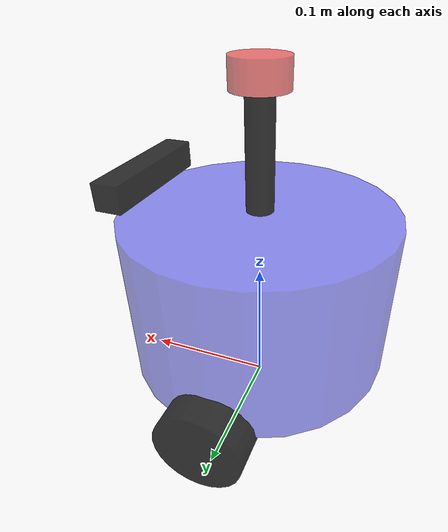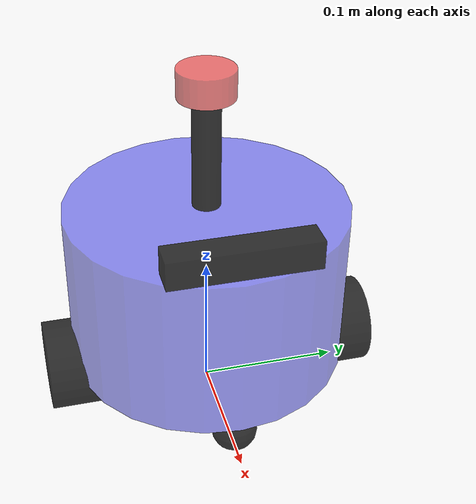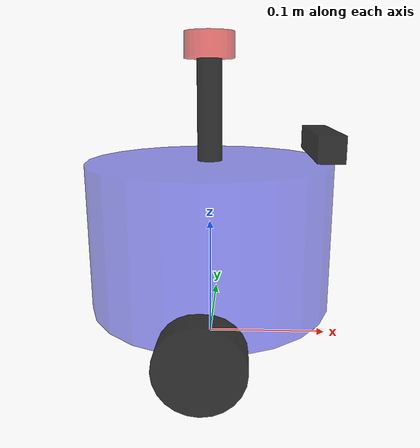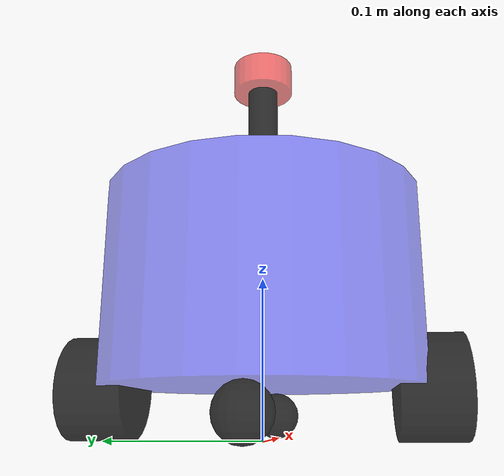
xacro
<?xml version="1.0"?>
<robot xmlns:xacro ="http://www.ros.org/wiki/xacro" name="robot">

    <xacro:arg name="lidar_type" default="gpu_lidar"/>
    <xacro:arg name="lidar_noise_stddev" default="0.01"/>
    <xacro:arg name="enable_camera" default="false"/>

    <xacro:include filename ="$(find bot_description)/bot/base.urdf.xacro"/>
    <xacro:include filename ="$(find bot_description)/bot/sensor/camera.urdf.xacro"/>
    <xacro:include filename ="$(find bot_description)/bot/sensor/imu.urdf.xacro"/>
    <xacro:include filename ="$(find bot_description)/bot/sensor/laser.urdf.xacro"/>
    <xacro:include filename ="$(find bot_description)/bot/actuator/wheel.urdf.xacro"/>
    <xacro:include filename ="$(find bot_description)/bot/actuator/caster.urdf.xacro"/>
    <!-- 导入gazebo差分驱动插件宏 -->
    <xacro:include filename ="$(find bot_description)/bot/plugins/plugin_drive.xacro"/>
    <xacro:include filename ="$(find bot_description)/bot/plugins/plugin_sensor.xacro"/>
    <xacro:gazebo_control_plugin/>
    <xacro:gazebo_sensor_plugin/>

    <xacro:base_xacro length ="0.12" radius="0.1"/>
    <xacro:imu_xacro xyz="0 0 0.02"/>
    <xacro:camera_xacro xyz="0.09 0 0.075"/>
    <xacro:laser_xacro xyz="0 0 0.1"/>
    <xacro:wheel_xacro wheel_name="left" xyz="0 0.10 -0.06" />
    <xacro:wheel_xacro wheel_name="right" xyz="0 -0.10 -0.06" />
    <xacro:caster_xacro caster_name="front" xyz="0.08 0.0 -0.076" />
    <xacro:caster_xacro caster_name="back" xyz="-0.08 0.0 -0.076" />

</robot>

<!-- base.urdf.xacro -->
<robot xmlns:xacro ="http://www.ros.org/wiki/xacro">
    <xacro:include filename="$(find bot_description)/bot/common_inertial.xacro"/>
    <xacro:macro name="base_xacro" params="length radius">
        <!-- 虚拟地面基准link，无视觉无碰撞无惯性 -->
        <link name="base_footprint"/>
        <joint name="base_footprint_joint" type="fixed">
            <parent link="base_footprint"/>
            <child link="base_link"/>
            <!-- 底盘中心高度 = 半厚 length/2 + 轮半径 0.032 = 0.092 m -->
            <origin xyz="0 0 ${length/2.0+0.032}" rpy="0 0 0"/>
        </joint>

        <link name="base_link">
            <visual>
                <origin xyz="0 0 0" rpy="0 0 0"/>
                <geometry>
                    <cylinder radius="${radius}" length="${length}" />
                </geometry>
                <material name="blue">
                    <color rgba="0.1 0.1 0.9 0.5"/>
                </material>
            </visual>
            <collision>
                <origin xyz="0 0 0" rpy="0 0 0"/>
                <geometry>
                    <cylinder radius="${radius}" length="${length}" />
                </geometry>
                <material name="white">
                    <color rgba="1 1 1 0.5"/>
                </material>
            </collision>
            <xacro:cylinder_inertia  m="1.0" r="${radius}" h="${length}"/>
        </link>
    </xacro:macro>
</robot>

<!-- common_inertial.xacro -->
<robot xmlns:xacro ="http://www.ros.org/wiki/xacro">
    <xacro:macro name="box_inertia" params="m w h d">
        <inertial>
            <origin xyz="0 0 0" rpy="0 0 0"/>
            <mass value="${m}"/>
            <inertia ixx="${m/12*(h*h+d*d)}" ixy="0" ixz="0" iyy="${m/12*(w*w+d*d)}" iyz="0" izz="${m/12*(w*w+h*h)}"/>
        </inertial>
    </xacro:macro>
    <xacro:macro name="cylinder_inertia" params="m r h">
        <inertial>
            <origin xyz="0 0 0" rpy="0 0 0"/>
            <mass value="${m}"/>
            <inertia ixx="${m/12*(3*r*r+h*h)}" ixy="0" ixz="0" iyy="${m/12*(3*r*r+h*h)}" iyz="0" izz="${m*r*r/2}"/>
        </inertial>
    </xacro:macro>
    <xacro:macro name="sphere_inertia" params="m r">
        <inertial>
            <origin xyz="0 0 0" rpy="0 0 0"/>
            <mass value="${m}"/>
            <inertia ixx="${2/5*m*r*r}" ixy="0" ixz="0" iyy="${2/5*m*r*r}" iyz="0" izz="${2/5*m*r*r}"/>
        </inertial>
    </xacro:macro>
</robot>

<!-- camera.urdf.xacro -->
<robot xmlns:xacro ="http://www.ros.org/wiki/xacro">
    <xacro:macro name="camera_xacro" params="xyz">
    <xacro:include filename="$(find bot_description)/bot/common_inertial.xacro"/>
        <link name="camera_link">
            <visual>
                <origin xyz="0 0 0" rpy="0 0 0"/>
                <geometry>
                    <box size="0.02 0.1 0.02" />
                </geometry>
                <material name="black">
                    <color rgba="0 0 0 0.8"/>
                </material>
            </visual>
            <collision>
                <origin xyz="0 0 0" rpy="0 0 0"/>
                <geometry>
                    <box size="0.02 0.1 0.02" />
                </geometry>
                <material name="white">
                    <color rgba="1 1 1 0.5"/>
                </material>
            </collision>
            <xacro:box_inertia  m="0.2" w="0.02" h="0.1" d="0.02"/>
        </link>
        <joint name="camera_joint" type="fixed">
            <parent link="base_link"/>
            <child link="camera_link"/>
            <origin xyz="${xyz}"/>
        </joint>
    </xacro:macro>
</robot>

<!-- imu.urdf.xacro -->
<robot xmlns:xacro ="http://www.ros.org/wiki/xacro">
    <xacro:macro name="imu_xacro" params="xyz">
    <xacro:include filename="$(find bot_description)/bot/common_inertial.xacro"/>
        <link name="imu_link">
            <visual>
                <origin xyz="0 0 0" rpy="0 0 0"/>
                <geometry>
                    <box size= "0.02 0.02 0.02" />
                </geometry>
                <material name="black">
                    <color rgba="0 0 0 0.8"/>
                </material>
            </visual>
            <collision>
                <origin xyz="0 0 0" rpy="0 0 0"/>
                <geometry>
                    <box size= "0.02 0.02 0.02" />
                </geometry>
                <material name="white">
                    <color rgba="1 1 1 0.5"/>
                </material>
            </collision>
            <xacro:box_inertia  m="0.2" w="0.02" h="0.02" d="0.02"/>
        </link>
        <joint name="imu_joint" type="fixed">
            <parent link="base_link"/>
            <child link="imu_link"/>
            <origin xyz="${xyz}"/>
        </joint>
    </xacro:macro>
</robot>

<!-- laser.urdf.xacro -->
<robot xmlns:xacro ="http://www.ros.org/wiki/xacro">
    <xacro:macro name="laser_xacro" params="xyz">
    <xacro:include filename="$(find bot_description)/bot/common_inertial.xacro"/>
    <!-- 小车上面的支撑杆 支撑杆上有laser-->
    <link name="laser_cylinder_link">
        <visual>
            <origin xyz="0 0 0" rpy="0 0 0"/>
            <geometry>
                <cylinder radius="0.01" length="0.1"/>
            </geometry>
            <material name="black">
                <color rgba="0 0 0 0.8"/>
            </material>
        </visual>
        <collision>
            <origin xyz="0 0 0" rpy="0 0 0"/>
            <geometry>
                <cylinder radius="0.01" length="0.1"/>
            </geometry>
            <material name="white">
                <color rgba="1 1 1 0.5"/>
            </material>
        </collision>
        <xacro:cylinder_inertia  m="0.1" r="0.01" h="0.1"/>
    </link>
    <joint name="laser_cylinder_joint" type="fixed">
            <parent link="base_link"/>
            <child link="laser_cylinder_link"/>
            <origin xyz="${xyz}"/>
    </joint>
    <link name="laser_link">
        <visual>
            <origin xyz="0 0 0" rpy="0 0 0"/>
            <geometry>
                <cylinder radius="0.02" length="0.02"/>
            </geometry>
            <material name="red">
                <color rgba="0.9 0.1 0.1 0.6"/>
            </material>
        </visual>
        <collision>
            <origin xyz="0 0 0" rpy="0 0 0"/>
            <geometry>
                <cylinder radius="0.02" length="0.02"/>
            </geometry>
            <material name="white">
                <color rgba="1 1 1 0.5"/>
            </material>
        </collision>
        <xacro:cylinder_inertia  m="0.1" r="0.02" h="0.02"/>
    </link>
    <joint name="laser_joint" type="fixed">
            <parent link="laser_cylinder_link"/>
            <child link="laser_link"/>
            <origin xyz="0 0 0.05"/>
    </joint>
    </xacro:macro>
</robot>

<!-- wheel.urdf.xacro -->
<robot xmlns:xacro ="http://www.ros.org/wiki/xacro">
    <xacro:include filename="$(find bot_description)/bot/common_inertial.xacro"/>
    <xacro:macro name="wheel_xacro" params="wheel_name xyz">
        <link name="${wheel_name}_wheel_link">
            <visual>
                <origin xyz="0 0 0" rpy="1.57 0 0"/>
                <geometry>
                    <cylinder radius="0.032" length="0.04"/>
                </geometry>
                <material name="black">
                    <color rgba="0 0 0 0.8"/>
                </material>
            </visual>
            <collision>
                <origin xyz="0 0 0" rpy="1.57 0 0"/>
                <geometry>
                    <cylinder radius="0.032" length="0.04"/>
                </geometry>
                <material name="white">
                    <color rgba="1 1 1 0.5"/>
                </material>
            </collision>
            <xacro:cylinder_inertia  m="0.1" r="0.032" h="0.04"/>
        </link>
    <joint name="${wheel_name}_wheel_joint" type="continuous">
            <parent link="base_link"/>
            <child link="${wheel_name}_wheel_link"/>
            <origin xyz="${xyz}"/>
            <axis xyz="0 1 0"/>
    </joint>
    <gazebo reference="${wheel_name}_wheel_link">
            <!-- 橡胶轮/地面摩擦约 1.0 即可；20.0 会让 ODE 接触求解器过刚，
                 容易出现轮子抖动或整车弹跳。kp 也从 1e9 降到 1e6。 -->
            <mu1 value="1.2" />
            <mu2 value="1.2" />
            <kp value="1000000.0" />
            <kd value="100.0" />
    </gazebo>
    </xacro:macro>
</robot>

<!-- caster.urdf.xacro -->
<!---"前后轮"-->
<robot xmlns:xacro ="http://www.ros.org/wiki/xacro">
    <xacro:include filename="$(find bot_description)/bot/common_inertial.xacro"/>
    <xacro:macro name="caster_xacro" params="caster_name xyz">
        <link name="${caster_name}_caster_link">
            <visual>
                <origin xyz="0 0 0" rpy="0 0 0"/>
                <geometry>
                    <sphere radius="0.016"/>
                </geometry>
                <material name="black">
                    <color rgba="0 0 0 0.8"/>
                </material>
            </visual>
            <collision>
                <origin xyz="0 0 0" rpy="0 0 0"/>
                <geometry>
                    <sphere radius="0.016"/>
                </geometry>
                <material name="white">
                    <color rgba="1 1 1 0.5"/>
                </material>
            </collision>
            <xacro:sphere_inertia m="0.01" r="0.016" />
        </link>
    <joint name="${caster_name}_caster_joint" type="fixed">
            <parent link="base_link"/>
            <child link="${caster_name}_caster_link"/>
            <origin xyz="${xyz}"/>
    </joint>
    <!-- 万向球只承担支撑：它们是 fixed 关节、只能横滑，
         摩擦必须接近零，否则差速原地转向时两个球的滑动阻力
         会抵消电机扭矩，车在转角就转不动（卡住）。
         0.2 -> 0.01，让原地旋转顺畅。 -->
    <gazebo reference="${caster_name}_caster_link">
        <mu1 value="0.01"/>
        <mu2 value="0.01"/>
        <kp value="1000000.0"/>
        <kd value="10.0"/>
    </gazebo>
    </xacro:macro>
</robot>
